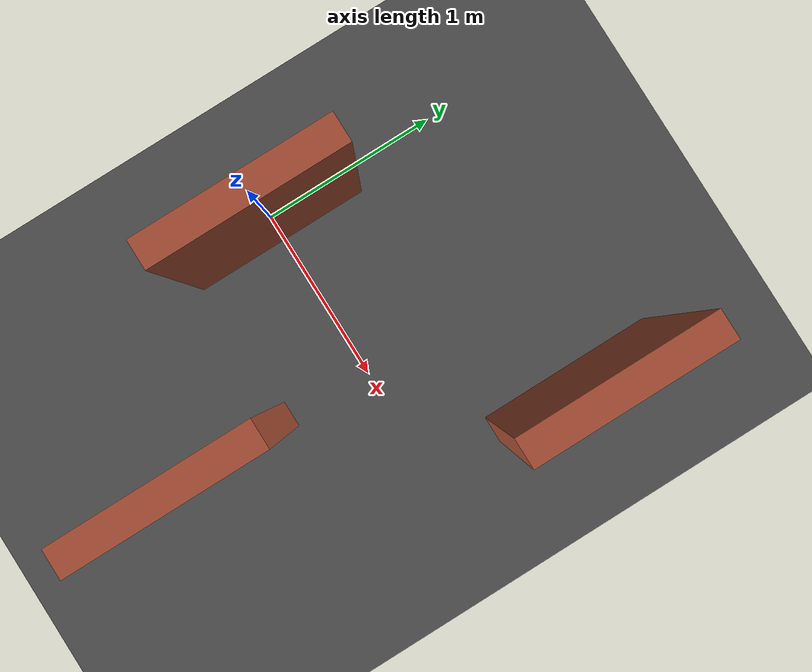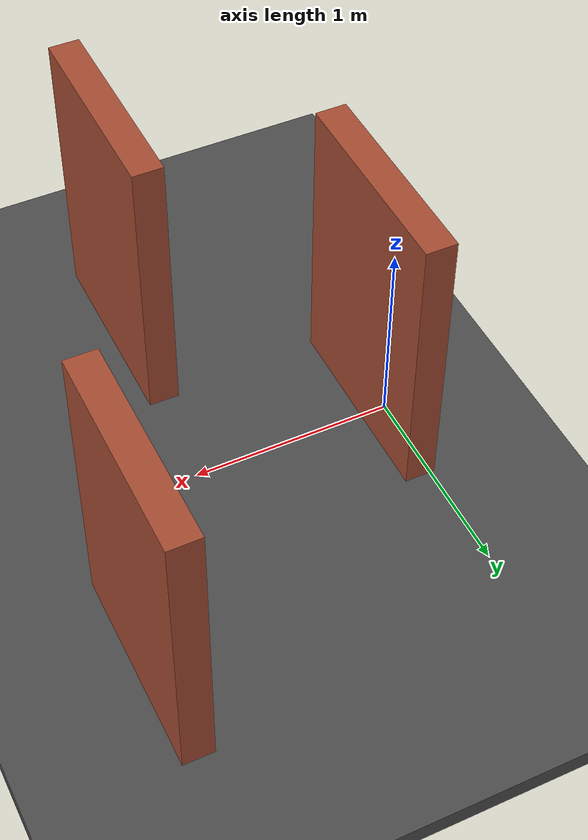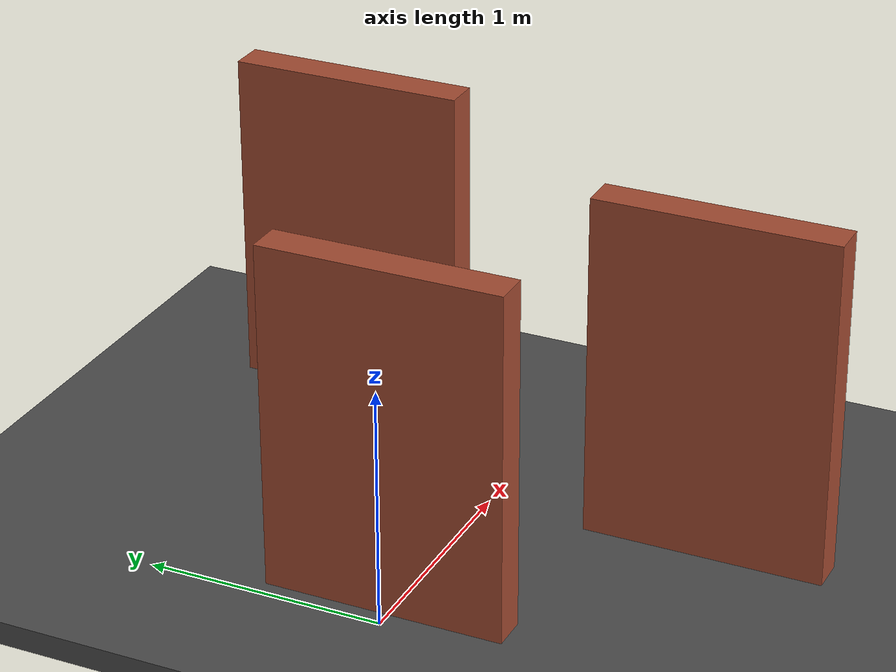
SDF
<sdf version="1.7">
 <world name="default">
  <light name="sun" type="directional">
   <pose>0 0 10 0 -0 0</pose>
   <diffuse>0.8 0.8 0.8 1</diffuse>
   <specular>0.2 0.2 0.2 1</specular>
   <attenuation>
    <range>1000</range>
    <constant>0.9</constant>
    <linear>0.01</linear>
    <quadratic>0.001</quadratic>
   </attenuation>
   <direction>-0.5 0.1 -0.9</direction>
   <spot><inner_angle>0</inner_angle><outer_angle>0</outer_angle><falloff>0</falloff></spot>
  </light>
  <gravity>0 0 -9.8</gravity>
  <magnetic_field>6e-06 2.3e-05 -4.2e-05</magnetic_field>
  <atmosphere type="adiabatic"/>
  <physics type="ode">
   <max_step_size>0.001</max_step_size>
   <real_time_factor>1</real_time_factor>
   <real_time_update_rate>1000</real_time_update_rate>
  </physics>
  <scene><ambient>0.4 0.4 0.4 1</ambient><background>0.7 0.7 0.7 1</background><shadows>1</shadows></scene>
  <spherical_coordinates>
   <surface_model>EARTH_WGS84</surface_model>
   <latitude_deg>0</latitude_deg>
   <longitude_deg>0</longitude_deg>
   <elevation>0</elevation>
   <heading_deg>0</heading_deg>
  </spherical_coordinates>
  <model name="asphalt_plane">
   <static>1</static>
   <link name="link">
    <collision name="collision"><geometry><box><size>18.4045 20 0.1</size></box></geometry></collision>
    <visual name="visual">
     <cast_shadows>0</cast_shadows>
     <geometry><box><size>18.4045 20 0.1</size></box></geometry>
     <material>
      <script>
       <uri>model://asphalt_plane/materials/scripts</uri>
       <uri>model://asphalt_plane/materials/textures</uri>
       <name>vrc/asphalt</name>
      </script>
     </material>
    </visual>
   </link>
   <pose>-0.081989 0.015303 0 0 -0 0</pose>
  </model>
  <model name="obstacle_wall">
   <pose>-1.01263 -0.009109 0 0 -0 0</pose>
   <link name="Wall_26">
    <collision name="Wall_26_Collision">
     <geometry><box><size>1 0.15 1.5</size></box></geometry>
     <pose>0 0 0.75 0 -0 0</pose>
    </collision>
    <visual name="Wall_26_Visual">
     <pose>0 0 0.75 0 -0 0</pose>
     <geometry><box><size>1 0.15 1.5</size></box></geometry>
     <material>
      <script><uri>file://media/materials/scripts/gazebo.material</uri><name>Gazebo/Bricks</name></script>
      <ambient>1 1 1 1</ambient>
     </material>
     <meta><layer>0</layer></meta>
    </visual>
    <pose>1.0885 0 0 0 -0 -1.5708</pose>
   </link>
   <static>1</static>
  </model>
  <model name="obstacle_wall_0">
   <pose>0.520597 0.905559 0 0 -0 0</pose>
   <link name="Wall_26">
    <collision name="Wall_26_Collision">
     <geometry><box><size>1 0.15 1.5</size></box></geometry>
     <pose>0 0 0.75 0 -0 0</pose>
    </collision>
    <visual name="Wall_26_Visual">
     <pose>0 0 0.75 0 -0 0</pose>
     <geometry><box><size>1 0.15 1.5</size></box></geometry>
     <material>
      <script><uri>file://media/materials/scripts/gazebo.material</uri><name>Gazebo/Bricks</name></script>
      <ambient>1 1 1 1</ambient>
     </material>
     <meta><layer>0</layer></meta>
    </visual>
    <pose>1.0885 0 0 0 -0 -1.5708</pose>
   </link>
   <static>1</static>
  </model>
  <model name="obstacle_wall_1">
   <pose>-0.122124 -0.962196 0 0 -0 0</pose>
   <link name="Wall_26">
    <collision name="Wall_26_Collision">
     <geometry><box><size>1 0.15 1.5</size></box></geometry>
     <pose>0 0 0.75 0 -0 0</pose>
    </collision>
    <visual name="Wall_26_Visual">
     <pose>0 0 0.75 0 -0 0</pose>
     <geometry><box><size>1 0.15 1.5</size></box></geometry>
     <material>
      <script><uri>file://media/materials/scripts/gazebo.material</uri><name>Gazebo/Bricks</name></script>
      <ambient>1 1 1 1</ambient>
     </material>
     <meta><layer>0</layer></meta>
    </visual>
    <pose>1.0885 0 0 0 -0 -1.5708</pose>
   </link>
   <static>1</static>
  </model>
 </world>
</sdf>
